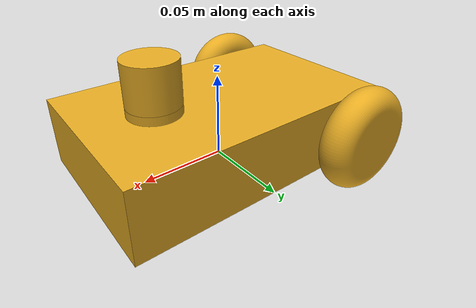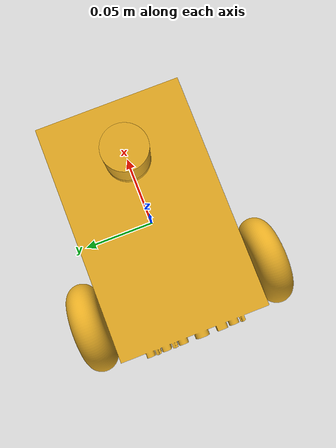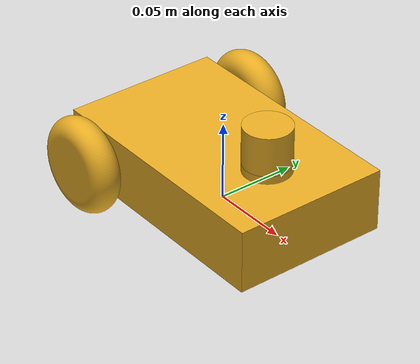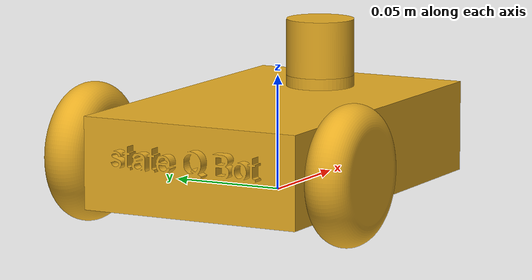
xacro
<?xml version="1.0"?>
<!-- Entry point. Generated by fusion2sim.py.
       xacro urdf/stateqbot.urdf.xacro                -> RViz model
       xacro urdf/stateqbot.urdf.xacro use_sim:=true  -> plus Gazebo parts and sensors -->
<robot xmlns:xacro="http://www.ros.org/wiki/xacro" name="stateqbot">
  <xacro:arg name="use_sim" default="false"/>
  <xacro:arg name="prefix"  default=""/>
  <!-- set by rsp.launch.py: true when urdf/stateqbot.ros2_control.xacro exists -->
  <xacro:arg name="use_control" default="false"/>
  <xacro:property name="use_sim" value="$(arg use_sim)"/>
  <xacro:property name="prefix"  value="$(arg prefix)"/>
  <material name="Steel">
    <color rgba="0.910 0.678 0.137 1.0" />
  </material>

  <xacro:include filename="$(find stateqbot_description)/urdf/assemblies/stateqbot.urdf.xacro"/>
  <xacro:include filename="$(find stateqbot_description)/urdf/stateqbot.gazebo.xacro"/>
  <xacro:include filename="$(find stateqbot_description)/urdf/stateqbot.sensors.xacro"/>
  <xacro:if value="$(arg use_control)">
    <xacro:include filename="$(find stateqbot_description)/urdf/stateqbot.ros2_control.xacro"/>
  </xacro:if>

  <xacro:stateqbot prefix="${prefix}"/>
  <xacro:if value="$(arg use_control)">
    <xacro:stateqbot_ros2_control prefix="${prefix}" use_sim="${use_sim}"/>
  </xacro:if>
  <xacro:if value="${use_sim}">
    <xacro:stateqbot_gazebo  prefix="${prefix}"/>
    <xacro:stateqbot_sensors prefix="${prefix}"/>
  </xacro:if>
</robot>

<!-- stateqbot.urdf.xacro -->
<robot xmlns:xacro="http://www.ros.org/wiki/xacro" name="stateqbot_macro">
  <xacro:macro name="stateqbot" params="prefix">

    <link name="${prefix}base_link">
    <inertial>
          <origin xyz="0.000124 0.000001 0.020106" rpy="0 0 0" />
          <mass value="5.066079" />
          <inertia ixx="4.880784e-03" ixy="3.230863e-07" ixz="-1.568186e-05" iyy="1.152398e-02" iyz="2.637999e-08" izz="1.503038e-02" />
        </inertial>
      <visual>
        <origin xyz="0.000000 0.000000 0.000000" rpy="0.000000 0.000000 0.000000" />
        <geometry>
          <mesh filename="package://stateqbot_description/meshes/stateqbot/base_link.dae" scale="1 1 1" />
        </geometry>
        <material name="Steel" />
      </visual>
      <collision>
        <origin xyz="-0.0025 0 0.02" rpy="0 0 0"/>
        <geometry>
          <box size="0.165 0.104 0.05"/>
        </geometry>
      </collision>
      <!-- caster: frictionless, its bottom exactly at wheel-bottom height -->
      <collision>
        <origin xyz="0.05 0 -0.00500066" rpy="0 0 0"/>
        <geometry>
          <sphere radius="0.005"/>
        </geometry>
      </collision>
    </link>

    <link name="${prefix}Right_wheel">
    <inertial>
          <origin xyz="0.000000 0.000000 0.010000" rpy="0 0 0" />
          <mass value="0.385127" />
          <inertia ixx="8.802519e-05" ixy="0.000000e+00" ixz="0.000000e+00" iyy="8.802519e-05" iyz="0.000000e+00" izz="1.538347e-04" />
        </inertial>
      <visual>
        <origin xyz="0.080000 0.150000 0.000000" rpy="1.570796 0.000000 0.000000" />
        <geometry>
          <mesh filename="package://stateqbot_description/meshes/stateqbot/Right_wheel.dae" scale="1 1 1" />
        </geometry>
        <material name="Steel" />
      </visual>
      <collision>
        <origin xyz="0 3.26796e-09 0.01" rpy="0 0 0"/>
        <geometry>
          <cylinder radius="0.0300007" length="0.02"/>
        </geometry>
      </collision>
    </link>

    <link name="${prefix}left_wheel">
    <inertial>
          <origin xyz="0.000000 0.000000 0.010000" rpy="0 0 0" />
          <mass value="0.385127" />
          <inertia ixx="8.802519e-05" ixy="0.000000e+00" ixz="0.000000e+00" iyy="8.802519e-05" iyz="0.000000e+00" izz="1.538347e-04" />
        </inertial>
      <visual>
        <origin xyz="0.000000 -0.150000 0.020000" rpy="-1.570796 0.000000 0.000000" />
        <geometry>
          <mesh filename="package://stateqbot_description/meshes/stateqbot/left_wheel.dae" scale="1 1 1" />
        </geometry>
        <material name="Steel" />
      </visual>
      <collision>
        <origin xyz="0 3.26794e-09 0.01" rpy="0 0 0"/>
        <geometry>
          <cylinder radius="0.0300007" length="0.02"/>
        </geometry>
      </collision>
    </link>

    <link name="${prefix}lidar">
    <inertial>
          <origin xyz="-0.000000 0.000000 0.012500" rpy="0 0 0" />
          <mass value="0.138721" />
          <inertia ixx="1.502810e-05" ixy="0.000000e+00" ixz="0.000000e+00" iyy="1.502810e-05" iyz="0.000000e+00" izz="1.560611e-05" />
        </inertial>
      <visual>
        <origin xyz="-0.040000 0.000000 -0.045000" rpy="0.000000 0.000000 0.000000" />
        <geometry>
          <mesh filename="package://stateqbot_description/meshes/stateqbot/lidar.dae" scale="1 1 1" />
        </geometry>
        <material name="Steel" />
      </visual>
      <collision>
        <origin xyz="0 0 0.0125" rpy="0 0 0"/>
        <geometry>
          <box size="0.03 0.029984 0.025"/>
        </geometry>
      </collision>
    </link>

    <joint name="${prefix}Right_wheel_joint" type="continuous">
      <parent link="${prefix}base_link"/>
      <child link="${prefix}Right_wheel"/>
      <origin xyz="-0.053333 -0.052 0.02" rpy="1.5708 0 0"/>
      <axis xyz="0 0 -1"/>
      <limit effort="7.03" velocity="33.3"/>
    </joint>

    <joint name="${prefix}left_wheel_joint" type="continuous">
      <parent link="${prefix}base_link"/>
      <child link="${prefix}left_wheel"/>
      <origin xyz="-0.053333 0.052 0.02" rpy="-1.5708 0 0"/>
      <axis xyz="0 0 1"/>
      <limit effort="7.03" velocity="33.3"/>
    </joint>

    <joint name="${prefix}lidar_joint" type="continuous">
      <parent link="${prefix}base_link"/>
      <child link="${prefix}lidar"/>
      <origin xyz="0.04 0 0.045" rpy="0 0 0"/>
      <axis xyz="0 0 1"/>
      <limit effort="1.0" velocity="10.0"/>
    </joint>

  </xacro:macro>
</robot>
